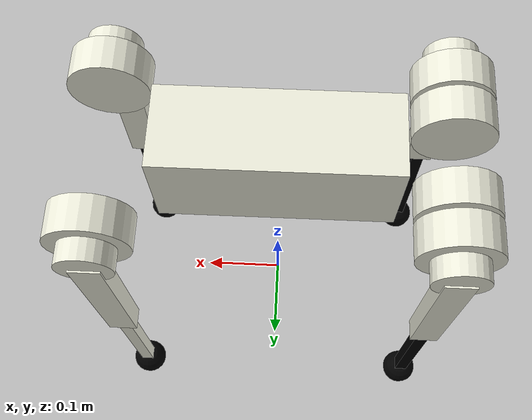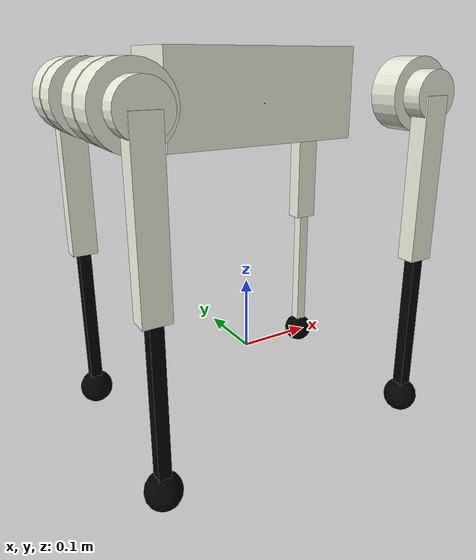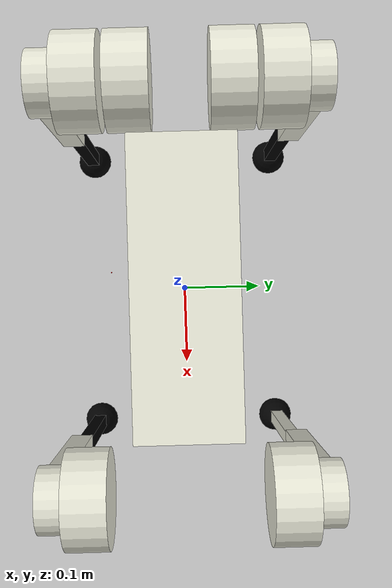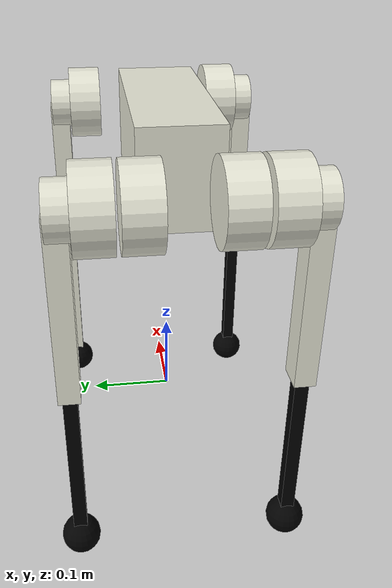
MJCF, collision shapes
<mujoco model="go1_description">
    <compiler angle="radian" meshdir="../meshes/" autolimits="true"/>
    <size njmax="500" nconmax="100" />
    <option iterations='50' solver='Newton' collision="all"/> <!-- dynamic-->
    <option cone="elliptic" impratio="100"/> <!-- pyramidal -->
    <!--  Added for soft foot tips-->

    <default>
        <light castshadow="false" diffuse="1 1 1"/>
        <motor ctrlrange="-33.5 33.5" ctrllimited="true"/>
        <camera fovy="60"/>
        <joint  damping="0.01" armature="0.01" frictionloss="0.2" />
    </default>

    <asset>
        <mesh name="trunk" file="trunk.stl" />
        <mesh name="hip" file="hip.stl" />
        <mesh name="thigh_mirror" file="thigh_mirror.stl" />
        <mesh name="calf" file="calf.stl"/>
        <mesh name="thigh" file="thigh.stl" />
    </asset>

    <asset>
        <texture type="skybox" builtin="gradient" rgb1="1.0 1.0 1.0" rgb2="1.0 1.0 1.0" width="512" height="512"/>
        <texture name="plane" type="2d" builtin="flat" rgb1="1 1 1" rgb2="1 1 1" width="512" height="512" mark="cross" markrgb="0 0 0"/>
        <material name="plane" reflectance="0.0" texture="plane" texrepeat="3 3" texuniform="true"/>
    </asset>

    <visual>
        <rgba com="0.502 1.0 0 0.5" contactforce="0.98 0.4 0.4 0.7" contactpoint="1.0 1.0 0.6 0.4"/>
        <scale com="0.2" forcewidth="0.035" contactwidth="0.10" contactheight="0.04"/>
    </visual>

    <worldbody>
        <light directional="true" diffuse=".8 .8 .8" pos="0 0 10" dir="0 0 -10"/>
        <camera name="track" mode="trackcom" pos="0 -1.3 1.6" xyaxes="1 0 0 0 0.707 0.707"/>

        <body name="trunk" pos="0 0 0.35">
            <inertial pos="0.0116053 0.00442221 0.000106692" quat="0.0111438 0.707126 -0.00935374 0.706938" mass="4.801" diaginertia="0.0447997 0.0366257 0.0162187" />
            <joint type="free" />
            <geom type="mesh" contype="0" conaffinity="0" group="1" rgba="0.913725 0.913725 0.847059 1" mesh="trunk" />
            <geom size="0.13 0.04675 0.057" type="box" rgba="0.913725 0.913725 0.847059 1" />
            <geom size="0.0005 0.0005 0.0005" pos="-0.01592 -0.06659 -0.00617" type="box" contype="0" conaffinity="0" group="1" rgba="0.8 0 0 0" />
            <geom size="0.0005 0.0005 0.0005" pos="-0.01592 -0.06659 -0.00617" type="box" rgba="0.8 0 0 0" />
            <site name="imu" pos="0 0 0"/>

            <body name="FR_hip" pos="0.1881 -0.04675 0">
                <inertial pos="-0.00406411 -0.0193463 4.50733e-06" quat="0.467526 0.531662 -0.466259 0.530431" mass="0.679292" diaginertia="0.00131334 0.00122648 0.000728484" />
                <joint name="FR_hip_joint" pos="0 0 0" axis="1 0 0" limited="true" range="-0.802851 0.802851" />
                <geom quat="0 1 0 0" type="mesh" contype="0" conaffinity="0" group="1" rgba="0.913725 0.913725 0.847059 1" mesh="hip" />
                <geom size="0.046 0.02" pos="0 -0.045 0" quat="0.707107 0.707107 0 0" type="cylinder" rgba="0.913725 0.913725 0.847059 0" />
                <geom size="0.031 0.02" pos="0 -0.07 0" quat="0.707107 0.707107 0 0" type="cylinder" rgba="0.913725 0.913725 0.847059 0" />

                <body name="FR_thigh" pos="0 -0.08 0">
                    <inertial pos="-0.003468 0.018947 -0.032736" quat="0.999266 0.00067676 -0.0382978 0.000639813" mass="0.898919" diaginertia="0.00542178 0.00514246 0.000998869" />
                    <joint name="FR_thigh_joint" pos="0 0 0" axis="0 1 0" limited="true" range="-1.0472 4.18879" />
                    <geom type="mesh" contype="0" conaffinity="0" group="1" rgba="0.913725 0.913725 0.847059 1" mesh="thigh_mirror" />
                    <geom size="0.1065 0.01225 0.017" pos="0 0 -0.1065" quat="0.707107 0 0.707107 0" type="box" rgba="0.913725 0.913725 0.847059 0" />
                    <body name="FR_calf" pos="0 0 -0.213">
                        <inertial pos="0.00455603 0.0009473 -0.147239" quat="0.762045 0.00970173 0.0180098 0.647201" mass="0.218015" diaginertia="0.00399678 0.00398122 3.99428e-05" />
                        <joint name="FR_calf_joint" pos="0 0 0" axis="0 1 0" limited="true" range="-2.69653 -0.916298" />
                        <geom type="mesh" contype="0" conaffinity="0" group="1" rgba="0 0 0 1" mesh="calf"/>
                        <geom size="0.1065 0.008 0.008" pos="0 0 -0.1065" quat="0.707107 0 0.707107 0" type="box" rgba="0 0 0 0" />
                        <geom size="0.01" pos="0 0 -0.213" contype="0" conaffinity="0" group="1" rgba="0 0 0 1" />
                        <geom size="0.02" pos="0 0 -0.213" rgba="0 0 0 1"  />
                        <geom name="FR_tip" type="sphere" pos="0 0 -0.213" size=".023" rgba="0 0 0 1" mass="0.00"  priority="1" solimp="0.915 1 0.031" condim="6"
            friction="0.8 0.02 0.01"/>
                        <site name="FR_tip" pos="0 0 -0.213"/> <!-- Add site to attach IMU and/or get tip pos/quat-->
                    </body>
                </body>
            </body>
            <body name="FL_hip" pos="0.1881 0.04675 0">
                <inertial pos="-0.00406411 0.0193463 4.50733e-06" quat="0.531662 0.467526 -0.530431 0.466259" mass="0.679292" diaginertia="0.00131334 0.00122648 0.000728484" />
                <joint name="FL_hip_joint" pos="0 0 0" axis="1 0 0" limited="true" range="-0.802851 0.802851" />
                <geom type="mesh" contype="0" conaffinity="0" group="1" rgba="0.913725 0.913725 0.847059 1" mesh="hip" />
                <geom size="0.046 0.02" pos="0 0.045 0" quat="0.707107 0.707107 0 0" type="cylinder" rgba="0.913725 0.913725 0.847059 0" />
                <geom size="0.031 0.02" pos="0 0.07 0" quat="0.707107 0.707107 0 0" type="cylinder" rgba="0.913725 0.913725 0.847059 0" />

                <body name="FL_thigh" pos="0 0.08 0">
                    <inertial pos="-0.003468 -0.018947 -0.032736" quat="0.999266 -0.00067676 -0.0382978 -0.000639813" mass="0.898919" diaginertia="0.00542178 0.00514246 0.000998869" />
                    <joint name="FL_thigh_joint" pos="0 0 0" axis="0 1 0" limited="true" range="-1.0472 4.18879" />
                    <geom type="mesh" contype="0" conaffinity="0" group="1" rgba="0.913725 0.913725 0.847059 1" mesh="thigh" />
                    <geom size="0.1065 0.01225 0.017" pos="0 0 -0.1065" quat="0.707107 0 0.707107 0" type="box" rgba="0.913725 0.913725 0.847059 0" />
                    <body name="FL_calf" pos="0 0 -0.213">
                        <inertial pos="0.00455603 0.0009473 -0.147239" quat="0.762045 0.00970173 0.0180098 0.647201" mass="0.218015" diaginertia="0.00399678 0.00398122 3.99428e-05" />
                        <joint name="FL_calf_joint" pos="0 0 0" axis="0 1 0" limited="true" range="-2.69653 -0.916298" />
                        <geom type="mesh" contype="0" conaffinity="0" group="1" rgba="0 0 0 1" mesh="calf" />
                        <geom size="0.1065 0.008 0.008" pos="0 0 -0.1065" quat="0.707107 0 0.707107 0" type="box" rgba="0.913725 0.913725 0.847059 0" />
                        <geom size="0.01" pos="0 0 -0.213" contype="0" conaffinity="0" group="1" rgba="1 0 0 1" />
                        <geom size="0.02" pos="0 0 -0.213" rgba="0 0 0 1" />
                        <geom name="FL_tip" type="sphere" pos="0 0 -0.213" size=".023" rgba="0 0 0 1" mass="0.00" priority="1" solimp="0.915 1 0.031" condim="6"
            friction="0.8 0.02 0.01"/>
                        <site name="FL_tip" pos="0 0 -0.213"/> <!-- Add site to attach IMU and/or get tip pos/quat-->
                    </body>
                </body>
            </body>
            <body name="RR_hip" pos="-0.1881 -0.04675 0">
                <inertial pos="0.00406411 -0.0193463 4.50733e-06" quat="0.530431 0.466259 -0.531662 0.467526" mass="0.679292" diaginertia="0.00131334 0.00122648 0.000728484" />
                <joint name="RR_hip_joint" pos="0 0 0" axis="1 0 0" limited="true" range="-0.802851 0.802851" />
                <geom quat="0 0 0 -1" type="mesh" contype="0" conaffinity="0" group="1" rgba="0.913725 0.913725 0.847059 1" mesh="hip" />
                <geom size="0.046 0.02" quat="0.707107 0.707107 0 0" type="cylinder" rgba="0.913725 0.913725 0.847059 1" />
                <geom size="0.046 0.02" pos="0 -0.045 0" quat="0.707107 0.707107 0 0" type="cylinder" rgba="0.913725 0.913725 0.847059 0" />
                <geom size="0.031 0.02" pos="0 -0.07 0" quat="0.707107 0.707107 0 0" type="cylinder" rgba="0.913725 0.913725 0.847059 0" />

                <body name="RR_thigh" pos="0 -0.08 0">
                    <inertial pos="-0.003468 0.018947 -0.032736" quat="0.999266 0.00067676 -0.0382978 0.000639813" mass="0.898919" diaginertia="0.00542178 0.00514246 0.000998869" />
                    <joint name="RR_thigh_joint" pos="0 0 0" axis="0 1 0" limited="true" range="-1.0472 4.18879" />
                    <geom type="mesh" contype="0" conaffinity="0" group="1" rgba="0.913725 0.913725 0.847059 1" mesh="thigh_mirror" />
                    <geom size="0.1065 0.01225 0.017" pos="0 0 -0.1065" quat="0.707107 0 0.707107 0" type="box" rgba="0.913725 0.913725 0.847059 0" />
                    <body name="RR_calf" pos="0 0 -0.213">
                        <inertial pos="0.00455603 0.0009473 -0.147239" quat="0.762045 0.00970173 0.0180098 0.647201" mass="0.218015" diaginertia="0.00399678 0.00398122 3.99428e-05" />
                        <joint name="RR_calf_joint" pos="0 0 0" axis="0 1 0" limited="true" range="-2.69653 -0.916298" />
                        <geom type="mesh" contype="0" conaffinity="0" group="1" rgba="0 0 0 1" mesh="calf" />
                        <geom size="0.1065 0.008 0.008" pos="0 0 -0.1065" quat="0.707107 0 0.707107 0" type="box" rgba="0 0 0 0" />
                        <geom size="0.01" pos="0 0 -0.213" contype="0" conaffinity="0" group="1" rgba="0 0 0 1" />
                        <geom size="0.02" pos="0 0 -0.213" rgba="0 0 0 1" />
                        <geom name="RR_tip" type="sphere" pos="0 0 -0.213" size=".023" rgba="0 0 0 1" mass="0.00" priority="1" solimp="0.915 1 0.031" condim="6" friction="0.8 0.02 0.01"/>
                        <site name="RR_tip" pos="0 0 -0.213"  rgba="0 0 0 1"/> <!-- Add site to attach IMU and/or get tip pos/quat-->
                    </body>
                </body>
            </body>
            <body name="RL_hip" pos="-0.1881 0.04675 0">
                <inertial pos="0.00406411 0.0193463 4.50733e-06" quat="0.466259 0.530431 -0.467526 0.531662" mass="0.679292" diaginertia="0.00131334 0.00122648 0.000728484" />
                <joint name="RL_hip_joint" pos="0 0 0" axis="1 0 0" limited="true" range="-0.802851 0.802851"  />
                <geom quat="0 0 1 0" type="mesh" contype="0" conaffinity="0" group="1" rgba="0.913725 0.913725 0.847059 1" mesh="hip" />
                <geom size="0.046 0.02" quat="0.707107 0.707107 0 0" type="cylinder" rgba="0.913725 0.913725 0.847059 1" />
                <geom size="0.046 0.02" pos="0 0.045 0" quat="0.707107 0.707107 0 0" type="cylinder" rgba="0.913725 0.913725 0.847059 0" />
                <geom size="0.031 0.02" pos="0 0.07 0" quat="0.707107 0.707107 0 0" type="cylinder" rgba="0.913725 0.913725 0.847059 0" />

                <body name="RL_thigh" pos="0 0.08 0">
                    <inertial pos="-0.003468 -0.018947 -0.032736" quat="0.999266 -0.00067676 -0.0382978 -0.000639813" mass="0.898919" diaginertia="0.00542178 0.00514246 0.000998869" />
                    <joint name="RL_thigh_joint" pos="0 0 0" axis="0 1 0" limited="true" range="-1.0472 4.18879" />
                    <geom type="mesh" contype="0" conaffinity="0" group="1" rgba="0.913725 0.913725 0.847059 1" mesh="thigh" />
                    <geom size="0.1065 0.01225 0.017" pos="0 0 -0.1065" quat="0.707107 0 0.707107 0" type="box" rgba="0.913725 0.913725 0.847059 0" />
                    <body name="RL_calf" pos="0 0 -0.213">
                        <inertial pos="0.00455603 0.0009473 -0.147239" quat="0.762045 0.00970173 0.0180098 0.647201" mass="0.218015" diaginertia="0.00399678 0.00398122 3.99428e-05" />
                        <joint name="RL_calf_joint" pos="0 0 0" axis="0 1 0" limited="true" range="-2.69653 -0.916298" />
                        <geom type="mesh" contype="0" conaffinity="0" group="1" rgba="0 0 0 1" mesh="calf" />
                        <geom size="0.1065 0.008 0.008" pos="0 0 -0.1065" quat="0.707107 0 0.707107 0" type="box" rgba="0 0 0 0" />
                        <geom size="0.01" pos="0 0 -0.213" contype="0" conaffinity="0" group="1" rgba="0 0 0 1" />
                        <geom size="0.02" pos="0 0 -0.213" rgba="0 0 0 1" />
                        <geom name="RL_tip" type="sphere" pos="0 0 -0.213" size=".023" rgba="0 0 0 1" mass="0.00" priority="1" solimp="0.915 1 0.031" condim="6" friction="0.8 0.02 0.01"/>

                        <site name="RL_tip" pos="0 0 -0.213" rgba="0 0 0 1"/> <!-- Add site to attach IMU and/or get tip pos/quat-->
                        <!-- solimp="0.015 1 0.031" -->

                    </body>
                </body>
            </body>
        </body>

    </worldbody>
    <actuator>

        <motor name="FR_hip"       gear="1" joint="FR_hip_joint"/>
        <motor name="FR_thigh"     gear="1" joint="FR_thigh_joint"/>
        <motor name="FR_calf"      gear="1" joint="FR_calf_joint"/>
        <motor name="FL_hip"       gear="1" joint="FL_hip_joint"/>
        <motor name="FL_thigh"     gear="1" joint="FL_thigh_joint"/>
        <motor name="FL_calf"      gear="1" joint="FL_calf_joint"/>
        <motor name="RR_hip"       gear="1" joint="RR_hip_joint"/>
        <motor name="RR_thigh"     gear="1" joint="RR_thigh_joint"/>
        <motor name="RR_calf"      gear="1" joint="RR_calf_joint" />
        <motor name="RL_hip"       gear="1" joint="RL_hip_joint"/>
        <motor name="RL_thigh"     gear="1" joint="RL_thigh_joint"/>
        <motor name="RL_calf"      gear="1" joint="RL_calf_joint"/>

        <!-- Added by me - to simulate motor Kp/Kd -->
        <position name="pservo_FR_hip" joint="FR_hip_joint"     kp="0"   />
        <velocity name="vservo_FR_hip" joint="FR_hip_joint"     kv="5.5" />
        <position name="pservo_FR_thigh" joint="FR_thigh_joint" kp="0"   />
        <velocity name="vservo_FR_thigh" joint="FR_thigh_joint" kv="3.0" />
        <position name="pservo_FR_calf" joint="FR_calf_joint"   kp="0"   />
        <velocity name="vservo_FR_calf" joint="FR_calf_joint"   kv="2.0" />

        <position name="pservo_FL_hip" joint="FL_hip_joint"     kp="0"   />
        <velocity name="vservo_FL_hip" joint="FL_hip_joint"     kv="5.5" />
        <position name="pservo_FL_thigh" joint="FL_thigh_joint" kp="0"   />
        <velocity name="vservo_FL_thigh" joint="FL_thigh_joint" kv="3.0" />
        <position name="pservo_FL_calf" joint="FL_calf_joint"   kp="0"   />
        <velocity name="vservo_FL_calf" joint="FL_calf_joint"   kv="3.0" />

        <position name="pservo_RR_hip" joint="RR_hip_joint"     kp="0"   />
        <velocity name="vservo_RR_hip" joint="RR_hip_joint"     kv="5.5" />
        <position name="pservo_RR_thigh" joint="RR_thigh_joint" kp="0"   />
        <velocity name="vservo_RR_thigh" joint="RR_thigh_joint" kv="3.0" />
        <position name="pservo_RR_calf" joint="RR_calf_joint"   kp="0"   />
        <velocity name="vservo_RR_calf" joint="RR_calf_joint"   kv="2.0" />

        <position name="pservo_RL_hip" joint="RL_hip_joint"     kp="0"   />
        <velocity name="vservo_RL_hip" joint="RL_hip_joint"     kv="5.5" />
        <position name="pservo_RL_thigh" joint="RL_thigh_joint" kp="0"   />
        <velocity name="vservo_RL_thigh" joint="RL_thigh_joint" kv="3.0" />
        <position name="pservo_RL_calf" joint="RL_calf_joint"   kp="0"   />
        <velocity name="vservo_RL_calf" joint="RL_calf_joint"   kv="2.0" />

        <!-- Added by me - END -->

    </actuator>

    <sensor>

        <jointpos name="FR_hip_pos"     joint="FR_hip_joint"/>
        <jointpos name="FR_thigh_pos"   joint="FR_thigh_joint"/>
        <jointpos name="FR_calf_pos"    joint="FR_calf_joint"/>
        <jointpos name="FL_hip_pos"     joint="FL_hip_joint"/>
        <jointpos name="FL_thigh_pos"   joint="FL_thigh_joint"/>
        <jointpos name="FL_calf_pos"    joint="FL_calf_joint"/>
        <jointpos name="RR_hip_pos"     joint="RR_hip_joint"/>
        <jointpos name="RR_thigh_pos"   joint="RR_thigh_joint"/>
        <jointpos name="RR_calf_pos"    joint="RR_calf_joint" />
        <jointpos name="RL_hip_pos"     joint="RL_hip_joint"/>
        <jointpos name="RL_thigh_pos"   joint="RL_thigh_joint"/>
        <jointpos name="RL_calf_pos"    joint="RL_calf_joint"/>

        <jointvel name="FR_hip_vel"     joint="FR_hip_joint"/>
        <jointvel name="FR_thigh_vel"   joint="FR_thigh_joint"/>
        <jointvel name="FR_calf_vel"    joint="FR_calf_joint"/>
        <jointvel name="FL_hip_vel"     joint="FL_hip_joint"/>
        <jointvel name="FL_thigh_vel"   joint="FL_thigh_joint"/>
        <jointvel name="FL_calf_vel"    joint="FL_calf_joint"/>
        <jointvel name="RR_hip_vel"     joint="RR_hip_joint"/>
        <jointvel name="RR_thigh_vel"   joint="RR_thigh_joint"/>
        <jointvel name="RR_calf_vel"    joint="RR_calf_joint" />
        <jointvel name="RL_hip_vel"     joint="RL_hip_joint"/>
        <jointvel name="RL_thigh_vel"   joint="RL_thigh_joint"/>
        <jointvel name="RL_calf_vel"    joint="RL_calf_joint"/>

        <!-- Body IMU/PosQuat  -->
        <accelerometer name="Body_Acc" site="imu"/>
        <gyro name="Body_Gyro" site="imu"/>

        <framepos name="Body_Pos" objtype="site" objname="imu"/>
        <framequat name="Body_Quat" objtype="site" objname="imu"/>

        <!-- Extra sensors for tips Pos/Quat -->
        <framepos name="FR_Pos"   objtype="site" objname="FR_tip"  reftype="site" refname="imu"/>
        <framequat name="FR_Quat" objtype="site" objname="FR_tip"  reftype="site" refname="imu"/>

        <framepos name="FL_Pos"   objtype="site" objname="FL_tip"  reftype="site" refname="imu"/>
        <framequat name="FL_Quat" objtype="site" objname="FL_tip"  reftype="site" refname="imu"/>

        <framepos name="RR_Pos"   objtype="site" objname="RR_tip"  reftype="site" refname="imu"/>
        <framequat name="RR_Quat" objtype="site" objname="RR_tip"  reftype="site" refname="imu"/>

        <framepos name="RL_Pos"   objtype="site" objname="RL_tip"  reftype="site" refname="imu"/>
        <framequat name="RL_Quat" objtype="site" objname="RL_tip"  reftype="site" refname="imu"/>

        <!-- Extra IMU sensor on foot tips -->
        <accelerometer name="FR_Acc" site="FR_tip" cutoff="10"/>
        <gyro name="FR_Gyro" site="FR_tip" />

        <accelerometer name="FL_Acc" site="FL_tip" cutoff="10"/>
        <gyro name="FL_Gyro" site="FL_tip"/>

        <accelerometer name="RR_Acc" site="RR_tip" cutoff="10"/>
        <gyro name="RR_Gyro" site="RR_tip"/>

        <accelerometer name="RL_Acc" site="RL_tip" cutoff="10"/>
        <gyro name="RL_Gyro" site="RL_tip"/>

        <!-- Force sensors -->
        <force name="FR_foot_force" site="FR_tip"/>
        <force name="FL_foot_force" site="FL_tip"/>
        <force name="RR_foot_force" site="RR_tip"/>
        <force name="RL_foot_force" site="RL_tip"/>

        <!-- Velocity of the CoM -->
        <velocimeter name="Body_Vel" site="imu"/>

    </sensor>

    <contact>
        <pair  geom1="FR_tip" geom2="slippery_surface" condim="3" friction="0.8 0.08 0.02" />
        <pair  geom1="FL_tip" geom2="slippery_surface" condim="3" friction="0.8 0.08 0.02" />
        <pair  geom1="RR_tip" geom2="slippery_surface" condim="3" friction="0.8 0.08 0.02" />
        <pair  geom1="RL_tip" geom2="slippery_surface" condim="3" friction="0.8 0.08 0.02" />
    </contact>

</mujoco>
